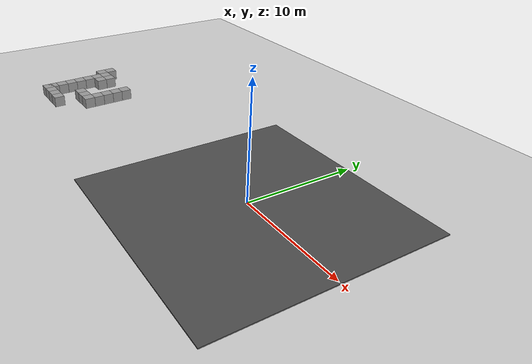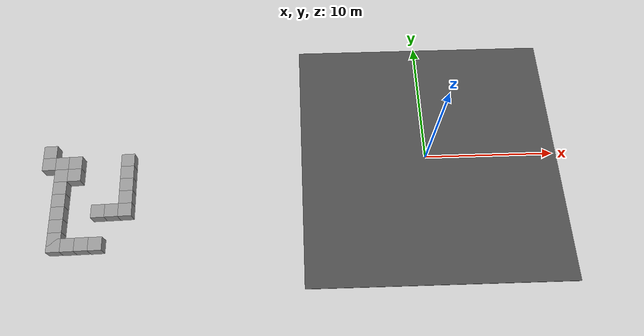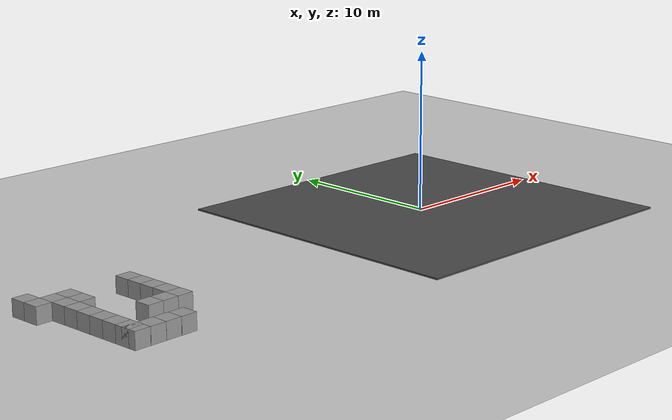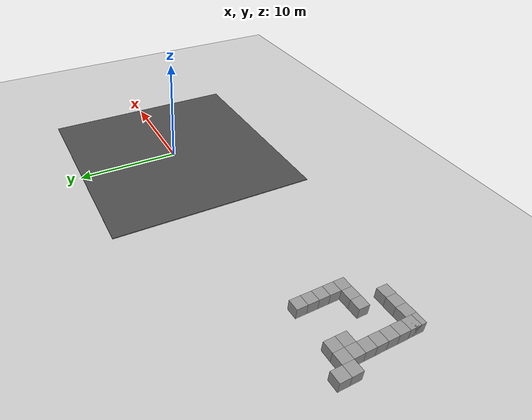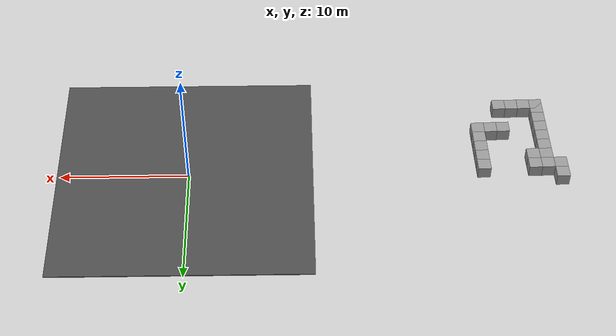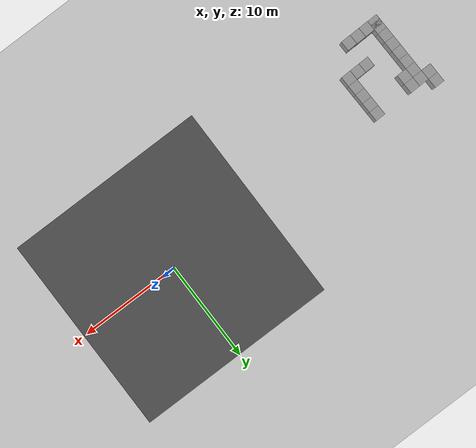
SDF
<sdf version="1.6">
 <world name="default">
  <model name="ground_plane">
   <static>1</static>
   <link name="link">
    <collision name="collision">
     <geometry><plane><normal>0 0 1</normal><size>100 100</size></plane></geometry>
     <surface><friction><ode><mu>100</mu><mu2>50</mu2></ode></friction></surface>
    </collision>
    <visual name="visual">
     <cast_shadows>0</cast_shadows>
     <geometry><plane><normal>0 0 1</normal><size>100 100</size></plane></geometry>
     <material>
      <script><uri>file://media/materials/scripts/gazebo.material</uri><name>Gazebo/Grey</name></script>
     </material>
    </visual>
    <velocity_decay><linear>0</linear><angular>0</angular></velocity_decay>
   </link>
  </model>
  <model name="asphalt_plane">
   <static>1</static>
   <link name="link">
    <collision name="collision"><geometry><box><size>20 20 0.1</size></box></geometry></collision>
    <visual name="visual">
     <cast_shadows>0</cast_shadows>
     <geometry><box><size>20 20 0.1</size></box></geometry>
     <material>
      <script>
       <uri>model://asphalt_plane/materials/scripts</uri>
       <uri>model://asphalt_plane/materials/textures</uri>
       <name>vrc/asphalt</name>
      </script>
     </material>
    </visual>
    <velocity_decay><linear>0</linear><angular>0</angular></velocity_decay>
   </link>
   <pose>0.276446 -0.119478 0 0 -0 0</pose>
  </model>
  <model name="maze">
   <link name="link_clone">
    <pose>-2.9747 -0.060863 -0 0 -0 0</pose>
    <inertial>
     <mass>10</mass>
     <inertia>
      <ixx>0.166667</ixx>
      <ixy>0</ixy>
      <ixz>0</ixz>
      <iyy>0.166667</iyy>
      <iyz>0</iyz>
      <izz>0.166667</izz>
     </inertia>
    </inertial>
    <visual name="visual">
     <geometry><box><size>1 1 1</size></box></geometry>
     <material>
      <script><name>Gazebo/Grey</name><uri>file://media/materials/scripts/gazebo.material</uri></script>
      <ambient>0.3 0.3 0.3 1</ambient>
      <diffuse>0.7 0.7 0.7 1</diffuse>
      <specular>0.01 0.01 0.01 1</specular>
      <emissive>0 0 0 1</emissive>
      <shader type="vertex"><normal_map>__default__</normal_map></shader>
     </material>
    </visual>
    <collision name="collision">
     <geometry><box><size>1 1 1</size></box></geometry>
     <surface>
      <friction>
       <ode><mu>1</mu><mu2>1</mu2><fdir1>0 0 0</fdir1><slip1>0</slip1><slip2>0</slip2></ode>
       <torsional>
        <coefficient>1</coefficient>
        <patch_radius>0</patch_radius>
        <surface_radius>0</surface_radius>
        <use_patch_radius>1</use_patch_radius>
        <ode><slip>0</slip></ode>
       </torsional>
      </friction>
      <bounce><restitution_coefficient>0</restitution_coefficient><threshold>1e+06</threshold></bounce>
      <contact>
       <collide_without_contact>0</collide_without_contact>
       <collide_without_contact_bitmask>1</collide_without_contact_bitmask>
       <collide_bitmask>1</collide_bitmask>
       <ode>
        <soft_cfm>0</soft_cfm>
        <soft_erp>0.2</soft_erp>
        <kp>1e+13</kp>
        <kd>1</kd>
        <max_vel>0.01</max_vel>
        <min_depth>0</min_depth>
       </ode>
       <bullet>
        <split_impulse>1</split_impulse>
        <split_impulse_penetration_threshold>-0.01</split_impulse_penetration_threshold>
        <soft_cfm>0</soft_cfm>
        <soft_erp>0.2</soft_erp>
        <kp>1e+13</kp>
        <kd>1</kd>
       </bullet>
      </contact>
     </surface>
    </collision>
   </link>
   <link name="link_clone_10">
    <pose>-5.9747 0.43991 -0 0 -0 0</pose>
    <inertial>
     <mass>10</mass>
     <inertia>
      <ixx>0.166667</ixx>
      <ixy>0</ixy>
      <ixz>0</ixz>
      <iyy>0.166667</iyy>
      <iyz>0</iyz>
      <izz>0.166667</izz>
     </inertia>
    </inertial>
    <visual name="visual">
     <geometry><box><size>1 1 1</size></box></geometry>
     <material>
      <script><name>Gazebo/Grey</name><uri>file://media/materials/scripts/gazebo.material</uri></script>
      <ambient>0.3 0.3 0.3 1</ambient>
      <diffuse>0.7 0.7 0.7 1</diffuse>
      <specular>0.01 0.01 0.01 1</specular>
      <emissive>0 0 0 1</emissive>
      <shader type="vertex"><normal_map>__default__</normal_map></shader>
     </material>
    </visual>
    <collision name="collision">
     <geometry><box><size>1 1 1</size></box></geometry>
     <surface>
      <friction>
       <ode><mu>1</mu><mu2>1</mu2><fdir1>0 0 0</fdir1><slip1>0</slip1><slip2>0</slip2></ode>
       <torsional>
        <coefficient>1</coefficient>
        <patch_radius>0</patch_radius>
        <surface_radius>0</surface_radius>
        <use_patch_radius>1</use_patch_radius>
        <ode><slip>0</slip></ode>
       </torsional>
      </friction>
      <bounce><restitution_coefficient>0</restitution_coefficient><threshold>1e+06</threshold></bounce>
      <contact>
       <collide_without_contact>0</collide_without_contact>
       <collide_without_contact_bitmask>1</collide_without_contact_bitmask>
       <collide_bitmask>1</collide_bitmask>
       <ode>
        <soft_cfm>0</soft_cfm>
        <soft_erp>0.2</soft_erp>
        <kp>1e+13</kp>
        <kd>1</kd>
        <max_vel>0.01</max_vel>
        <min_depth>0</min_depth>
       </ode>
       <bullet>
        <split_impulse>1</split_impulse>
        <split_impulse_penetration_threshold>-0.01</split_impulse_penetration_threshold>
        <soft_cfm>0</soft_cfm>
        <soft_erp>0.2</soft_erp>
        <kp>1e+13</kp>
        <kd>1</kd>
       </bullet>
      </contact>
     </surface>
    </collision>
   </link>
   <link name="link_clone_11">
    <pose>-5.9747 1.43991 -0 0 -0 0</pose>
    <inertial>
     <mass>10</mass>
     <inertia>
      <ixx>0.166667</ixx>
      <ixy>0</ixy>
      <ixz>0</ixz>
      <iyy>0.166667</iyy>
      <iyz>0</iyz>
      <izz>0.166667</izz>
     </inertia>
    </inertial>
    <visual name="visual">
     <geometry><box><size>1 1 1</size></box></geometry>
     <material>
      <script><name>Gazebo/Grey</name><uri>file://media/materials/scripts/gazebo.material</uri></script>
      <ambient>0.3 0.3 0.3 1</ambient>
      <diffuse>0.7 0.7 0.7 1</diffuse>
      <specular>0.01 0.01 0.01 1</specular>
      <emissive>0 0 0 1</emissive>
      <shader type="vertex"><normal_map>__default__</normal_map></shader>
     </material>
    </visual>
    <collision name="collision">
     <geometry><box><size>1 1 1</size></box></geometry>
     <surface>
      <friction>
       <ode><mu>1</mu><mu2>1</mu2><fdir1>0 0 0</fdir1><slip1>0</slip1><slip2>0</slip2></ode>
       <torsional>
        <coefficient>1</coefficient>
        <patch_radius>0</patch_radius>
        <surface_radius>0</surface_radius>
        <use_patch_radius>1</use_patch_radius>
        <ode><slip>0</slip></ode>
       </torsional>
      </friction>
      <bounce><restitution_coefficient>0</restitution_coefficient><threshold>1e+06</threshold></bounce>
      <contact>
       <collide_without_contact>0</collide_without_contact>
       <collide_without_contact_bitmask>1</collide_without_contact_bitmask>
       <collide_bitmask>1</collide_bitmask>
       <ode>
        <soft_cfm>0</soft_cfm>
        <soft_erp>0.2</soft_erp>
        <kp>1e+13</kp>
        <kd>1</kd>
        <max_vel>0.01</max_vel>
        <min_depth>0</min_depth>
       </ode>
       <bullet>
        <split_impulse>1</split_impulse>
        <split_impulse_penetration_threshold>-0.01</split_impulse_penetration_threshold>
        <soft_cfm>0</soft_cfm>
        <soft_erp>0.2</soft_erp>
        <kp>1e+13</kp>
        <kd>1</kd>
       </bullet>
      </contact>
     </surface>
    </collision>
   </link>
   <link name="link_clone_12">
    <pose>-5.9747 2.43991 -0 0 -0 0</pose>
    <inertial>
     <mass>10</mass>
     <inertia>
      <ixx>0.166667</ixx>
      <ixy>0</ixy>
      <ixz>0</ixz>
      <iyy>0.166667</iyy>
      <iyz>0</iyz>
      <izz>0.166667</izz>
     </inertia>
    </inertial>
    <visual name="visual">
     <geometry><box><size>1 1 1</size></box></geometry>
     <material>
      <script><name>Gazebo/Grey</name><uri>file://media/materials/scripts/gazebo.material</uri></script>
      <ambient>0.3 0.3 0.3 1</ambient>
      <diffuse>0.7 0.7 0.7 1</diffuse>
      <specular>0.01 0.01 0.01 1</specular>
      <emissive>0 0 0 1</emissive>
      <shader type="vertex"><normal_map>__default__</normal_map></shader>
     </material>
    </visual>
    <collision name="collision">
     <geometry><box><size>1 1 1</size></box></geometry>
     <surface>
      <friction>
       <ode><mu>1</mu><mu2>1</mu2><fdir1>0 0 0</fdir1><slip1>0</slip1><slip2>0</slip2></ode>
       <torsional>
        <coefficient>1</coefficient>
        <patch_radius>0</patch_radius>
        <surface_radius>0</surface_radius>
        <use_patch_radius>1</use_patch_radius>
        <ode><slip>0</slip></ode>
       </torsional>
      </friction>
      <bounce><restitution_coefficient>0</restitution_coefficient><threshold>1e+06</threshold></bounce>
      <contact>
       <collide_without_contact>0</collide_without_contact>
       <collide_without_contact_bitmask>1</collide_without_contact_bitmask>
       <collide_bitmask>1</collide_bitmask>
       <ode>
        <soft_cfm>0</soft_cfm>
        <soft_erp>0.2</soft_erp>
        <kp>1e+13</kp>
        <kd>1</kd>
        <max_vel>0.01</max_vel>
        <min_depth>0</min_depth>
       </ode>
       <bullet>
        <split_impulse>1</split_impulse>
        <split_impulse_penetration_threshold>-0.01</split_impulse_penetration_threshold>
        <soft_cfm>0</soft_cfm>
        <soft_erp>0.2</soft_erp>
        <kp>1e+13</kp>
        <kd>1</kd>
       </bullet>
      </contact>
     </surface>
    </collision>
   </link>
   <link name="link_clone_13">
    <pose>-5.9747 3.43991 0 0 -0 0</pose>
    <inertial>
     <mass>10</mass>
     <inertia>
      <ixx>0.166667</ixx>
      <ixy>0</ixy>
      <ixz>0</ixz>
      <iyy>0.166667</iyy>
      <iyz>0</iyz>
      <izz>0.166667</izz>
     </inertia>
    </inertial>
    <visual name="visual">
     <geometry><box><size>1 1 1</size></box></geometry>
     <material>
      <script><name>Gazebo/Grey</name><uri>file://media/materials/scripts/gazebo.material</uri></script>
      <ambient>0.3 0.3 0.3 1</ambient>
      <diffuse>0.7 0.7 0.7 1</diffuse>
      <specular>0.01 0.01 0.01 1</specular>
      <emissive>0 0 0 1</emissive>
      <shader type="vertex"><normal_map>__default__</normal_map></shader>
     </material>
    </visual>
    <collision name="collision">
     <geometry><box><size>1 1 1</size></box></geometry>
     <surface>
      <friction>
       <ode><mu>1</mu><mu2>1</mu2><fdir1>0 0 0</fdir1><slip1>0</slip1><slip2>0</slip2></ode>
       <torsional>
        <coefficient>1</coefficient>
        <patch_radius>0</patch_radius>
        <surface_radius>0</surface_radius>
        <use_patch_radius>1</use_patch_radius>
        <ode><slip>0</slip></ode>
       </torsional>
      </friction>
      <bounce><restitution_coefficient>0</restitution_coefficient><threshold>1e+06</threshold></bounce>
      <contact>
       <collide_without_contact>0</collide_without_contact>
       <collide_without_contact_bitmask>1</collide_without_contact_bitmask>
       <collide_bitmask>1</collide_bitmask>
       <ode>
        <soft_cfm>0</soft_cfm>
        <soft_erp>0.2</soft_erp>
        <kp>1e+13</kp>
        <kd>1</kd>
        <max_vel>0.01</max_vel>
        <min_depth>0</min_depth>
       </ode>
       <bullet>
        <split_impulse>1</split_impulse>
        <split_impulse_penetration_threshold>-0.01</split_impulse_penetration_threshold>
        <soft_cfm>0</soft_cfm>
        <soft_erp>0.2</soft_erp>
        <kp>1e+13</kp>
        <kd>1</kd>
       </bullet>
      </contact>
     </surface>
    </collision>
   </link>
   <link name="link_clone_14">
    <pose>-5.9747 4.43991 0 0 -0 0</pose>
    <inertial>
     <mass>10</mass>
     <inertia>
      <ixx>0.166667</ixx>
      <ixy>0</ixy>
      <ixz>0</ixz>
      <iyy>0.166667</iyy>
      <iyz>0</iyz>
      <izz>0.166667</izz>
     </inertia>
    </inertial>
    <visual name="visual">
     <geometry><box><size>1 1 1</size></box></geometry>
     <material>
      <script><name>Gazebo/Grey</name><uri>file://media/materials/scripts/gazebo.material</uri></script>
      <ambient>0.3 0.3 0.3 1</ambient>
      <diffuse>0.7 0.7 0.7 1</diffuse>
      <specular>0.01 0.01 0.01 1</specular>
      <emissive>0 0 0 1</emissive>
      <shader type="vertex"><normal_map>__default__</normal_map></shader>
     </material>
    </visual>
    <collision name="collision">
     <geometry><box><size>1 1 1</size></box></geometry>
     <surface>
      <friction>
       <ode><mu>1</mu><mu2>1</mu2><fdir1>0 0 0</fdir1><slip1>0</slip1><slip2>0</slip2></ode>
       <torsional>
        <coefficient>1</coefficient>
        <patch_radius>0</patch_radius>
        <surface_radius>0</surface_radius>
        <use_patch_radius>1</use_patch_radius>
        <ode><slip>0</slip></ode>
       </torsional>
      </friction>
      <bounce><restitution_coefficient>0</restitution_coefficient><threshold>1e+06</threshold></bounce>
      <contact>
       <collide_without_contact>0</collide_without_contact>
       <collide_without_contact_bitmask>1</collide_without_contact_bitmask>
       <collide_bitmask>1</collide_bitmask>
       <ode>
        <soft_cfm>0</soft_cfm>
        <soft_erp>0.2</soft_erp>
        <kp>1e+13</kp>
        <kd>1</kd>
        <max_vel>0.01</max_vel>
        <min_depth>0</min_depth>
       </ode>
       <bullet>
        <split_impulse>1</split_impulse>
        <split_impulse_penetration_threshold>-0.01</split_impulse_penetration_threshold>
        <soft_cfm>0</soft_cfm>
        <soft_erp>0.2</soft_erp>
        <kp>1e+13</kp>
        <kd>1</kd>
       </bullet>
      </contact>
     </surface>
    </collision>
   </link>
   <link name="link_clone_15">
    <pose>-5.9747 5.43991 0 0 -0 0</pose>
    <inertial>
     <mass>10</mass>
     <inertia>
      <ixx>0.166667</ixx>
      <ixy>0</ixy>
      <ixz>0</ixz>
      <iyy>0.166667</iyy>
      <iyz>0</iyz>
      <izz>0.166667</izz>
     </inertia>
    </inertial>
    <visual name="visual">
     <geometry><box><size>1 1 1</size></box></geometry>
     <material>
      <script><name>Gazebo/Grey</name><uri>file://media/materials/scripts/gazebo.material</uri></script>
      <ambient>0.3 0.3 0.3 1</ambient>
      <diffuse>0.7 0.7 0.7 1</diffuse>
      <specular>0.01 0.01 0.01 1</specular>
      <emissive>0 0 0 1</emissive>
      <shader type="vertex"><normal_map>__default__</normal_map></shader>
     </material>
    </visual>
    <collision name="collision">
     <geometry><box><size>1 1 1</size></box></geometry>
     <surface>
      <friction>
       <ode><mu>1</mu><mu2>1</mu2><fdir1>0 0 0</fdir1><slip1>0</slip1><slip2>0</slip2></ode>
       <torsional>
        <coefficient>1</coefficient>
        <patch_radius>0</patch_radius>
        <surface_radius>0</surface_radius>
        <use_patch_radius>1</use_patch_radius>
        <ode><slip>0</slip></ode>
       </torsional>
      </friction>
      <bounce><restitution_coefficient>0</restitution_coefficient><threshold>1e+06</threshold></bounce>
      <contact>
       <collide_without_contact>0</collide_without_contact>
       <collide_without_contact_bitmask>1</collide_without_contact_bitmask>
       <collide_bitmask>1</collide_bitmask>
       <ode>
        <soft_cfm>0</soft_cfm>
        <soft_erp>0.2</soft_erp>
        <kp>1e+13</kp>
        <kd>1</kd>
        <max_vel>0.01</max_vel>
        <min_depth>0</min_depth>
       </ode>
       <bullet>
        <split_impulse>1</split_impulse>
        <split_impulse_penetration_threshold>-0.01</split_impulse_penetration_threshold>
        <soft_cfm>0</soft_cfm>
        <soft_erp>0.2</soft_erp>
        <kp>1e+13</kp>
        <kd>1</kd>
       </bullet>
      </contact>
     </surface>
    </collision>
   </link>
   <link name="link_clone_16">
    <pose>-4.9747 5.43991 0 0 -0 0</pose>
    <inertial>
     <mass>10</mass>
     <inertia>
      <ixx>0.166667</ixx>
      <ixy>0</ixy>
      <ixz>0</ixz>
      <iyy>0.166667</iyy>
      <iyz>0</iyz>
      <izz>0.166667</izz>
     </inertia>
    </inertial>
    <visual name="visual">
     <geometry><box><size>1 1 1</size></box></geometry>
     <material>
      <script><name>Gazebo/Grey</name><uri>file://media/materials/scripts/gazebo.material</uri></script>
      <ambient>0.3 0.3 0.3 1</ambient>
      <diffuse>0.7 0.7 0.7 1</diffuse>
      <specular>0.01 0.01 0.01 1</specular>
      <emissive>0 0 0 1</emissive>
      <shader type="vertex"><normal_map>__default__</normal_map></shader>
     </material>
    </visual>
    <collision name="collision">
     <geometry><box><size>1 1 1</size></box></geometry>
     <surface>
      <friction>
       <ode><mu>1</mu><mu2>1</mu2><fdir1>0 0 0</fdir1><slip1>0</slip1><slip2>0</slip2></ode>
       <torsional>
        <coefficient>1</coefficient>
        <patch_radius>0</patch_radius>
        <surface_radius>0</surface_radius>
        <use_patch_radius>1</use_patch_radius>
        <ode><slip>0</slip></ode>
       </torsional>
      </friction>
      <bounce><restitution_coefficient>0</restitution_coefficient><threshold>1e+06</threshold></bounce>
      <contact>
       <collide_without_contact>0</collide_without_contact>
       <collide_without_contact_bitmask>1</collide_without_contact_bitmask>
       <collide_bitmask>1</collide_bitmask>
       <ode>
        <soft_cfm>0</soft_cfm>
        <soft_erp>0.2</soft_erp>
        <kp>1e+13</kp>
        <kd>1</kd>
        <max_vel>0.01</max_vel>
        <min_depth>0</min_depth>
       </ode>
       <bullet>
        <split_impulse>1</split_impulse>
        <split_impulse_penetration_threshold>-0.01</split_impulse_penetration_threshold>
        <soft_cfm>0</soft_cfm>
        <soft_erp>0.2</soft_erp>
        <kp>1e+13</kp>
        <kd>1</kd>
       </bullet>
      </contact>
     </surface>
    </collision>
   </link>
   <link name="link_clone_17">
    <pose>-4.9747 6.43991 -0 0 -0 0</pose>
    <inertial>
     <mass>10</mass>
     <inertia>
      <ixx>0.166667</ixx>
      <ixy>0</ixy>
      <ixz>0</ixz>
      <iyy>0.166667</iyy>
      <iyz>0</iyz>
      <izz>0.166667</izz>
     </inertia>
    </inertial>
    <visual name="visual">
     <geometry><box><size>1 1 1</size></box></geometry>
     <material>
      <script><name>Gazebo/Grey</name><uri>file://media/materials/scripts/gazebo.material</uri></script>
      <ambient>0.3 0.3 0.3 1</ambient>
      <diffuse>0.7 0.7 0.7 1</diffuse>
      <specular>0.01 0.01 0.01 1</specular>
      <emissive>0 0 0 1</emissive>
      <shader type="vertex"><normal_map>__default__</normal_map></shader>
     </material>
    </visual>
    <collision name="collision">
     <geometry><box><size>1 1 1</size></box></geometry>
     <surface>
      <friction>
       <ode><mu>1</mu><mu2>1</mu2><fdir1>0 0 0</fdir1><slip1>0</slip1><slip2>0</slip2></ode>
       <torsional>
        <coefficient>1</coefficient>
        <patch_radius>0</patch_radius>
        <surface_radius>0</surface_radius>
        <use_patch_radius>1</use_patch_radius>
        <ode><slip>0</slip></ode>
       </torsional>
      </friction>
      <bounce><restitution_coefficient>0</restitution_coefficient><threshold>1e+06</threshold></bounce>
      <contact>
       <collide_without_contact>0</collide_without_contact>
       <collide_without_contact_bitmask>1</collide_without_contact_bitmask>
       <collide_bitmask>1</collide_bitmask>
       <ode>
        <soft_cfm>0</soft_cfm>
        <soft_erp>0.2</soft_erp>
        <kp>1e+13</kp>
        <kd>1</kd>
        <max_vel>0.01</max_vel>
        <min_depth>0</min_depth>
       </ode>
       <bullet>
        <split_impulse>1</split_impulse>
        <split_impulse_penetration_threshold>-0.01</split_impulse_penetration_threshold>
        <soft_cfm>0</soft_cfm>
        <soft_erp>0.2</soft_erp>
        <kp>1e+13</kp>
        <kd>1</kd>
       </bullet>
      </contact>
     </surface>
    </collision>
   </link>
   <link name="link_clone_18">
    <pose>-0.974702 3.43991 0 0 -0 0</pose>
    <inertial>
     <mass>10</mass>
     <inertia>
      <ixx>0.166667</ixx>
      <ixy>0</ixy>
      <ixz>0</ixz>
      <iyy>0.166667</iyy>
      <iyz>0</iyz>
      <izz>0.166667</izz>
     </inertia>
    </inertial>
    <visual name="visual">
     <geometry><box><size>1 1 1</size></box></geometry>
     <material>
      <script><name>Gazebo/Grey</name><uri>file://media/materials/scripts/gazebo.material</uri></script>
      <ambient>0.3 0.3 0.3 1</ambient>
      <diffuse>0.7 0.7 0.7 1</diffuse>
      <specular>0.01 0.01 0.01 1</specular>
      <emissive>0 0 0 1</emissive>
      <shader type="vertex"><normal_map>__default__</normal_map></shader>
     </material>
    </visual>
    <collision name="collision">
     <geometry><box><size>1 1 1</size></box></geometry>
     <surface>
      <friction>
       <ode><mu>1</mu><mu2>1</mu2><fdir1>0 0 0</fdir1><slip1>0</slip1><slip2>0</slip2></ode>
       <torsional>
        <coefficient>1</coefficient>
        <patch_radius>0</patch_radius>
        <surface_radius>0</surface_radius>
        <use_patch_radius>1</use_patch_radius>
        <ode><slip>0</slip></ode>
       </torsional>
      </friction>
      <bounce><restitution_coefficient>0</restitution_coefficient><threshold>1e+06</threshold></bounce>
      <contact>
       <collide_without_contact>0</collide_without_contact>
       <collide_without_contact_bitmask>1</collide_without_contact_bitmask>
       <collide_bitmask>1</collide_bitmask>
       <ode>
        <soft_cfm>0</soft_cfm>
        <soft_erp>0.2</soft_erp>
        <kp>1e+13</kp>
        <kd>1</kd>
        <max_vel>0.01</max_vel>
        <min_depth>0</min_depth>
       </ode>
       <bullet>
        <split_impulse>1</split_impulse>
        <split_impulse_penetration_threshold>-0.01</split_impulse_penetration_threshold>
        <soft_cfm>0</soft_cfm>
        <soft_erp>0.2</soft_erp>
        <kp>1e+13</kp>
        <kd>1</kd>
       </bullet>
      </contact>
     </surface>
    </collision>
   </link>
   <link name="link_clone_19">
    <pose>-0.9747 4.43991 0 0 -0 0</pose>
    <inertial>
     <mass>10</mass>
     <inertia>
      <ixx>0.166667</ixx>
      <ixy>0</ixy>
      <ixz>0</ixz>
      <iyy>0.166667</iyy>
      <iyz>0</iyz>
      <izz>0.166667</izz>
     </inertia>
    </inertial>
    <visual name="visual">
     <geometry><box><size>1 1 1</size></box></geometry>
     <material>
      <script><name>Gazebo/Grey</name><uri>file://media/materials/scripts/gazebo.material</uri></script>
      <ambient>0.3 0.3 0.3 1</ambient>
      <diffuse>0.7 0.7 0.7 1</diffuse>
      <specular>0.01 0.01 0.01 1</specular>
      <emissive>0 0 0 1</emissive>
      <shader type="vertex"><normal_map>__default__</normal_map></shader>
     </material>
    </visual>
    <collision name="collision">
     <geometry><box><size>1 1 1</size></box></geometry>
     <surface>
      <friction>
       <ode><mu>1</mu><mu2>1</mu2><fdir1>0 0 0</fdir1><slip1>0</slip1><slip2>0</slip2></ode>
       <torsional>
        <coefficient>1</coefficient>
        <patch_radius>0</patch_radius>
        <surface_radius>0</surface_radius>
        <use_patch_radius>1</use_patch_radius>
        <ode><slip>0</slip></ode>
       </torsional>
      </friction>
      <bounce><restitution_coefficient>0</restitution_coefficient><threshold>1e+06</threshold></bounce>
      <contact>
       <collide_without_contact>0</collide_without_contact>
       <collide_without_contact_bitmask>1</collide_without_contact_bitmask>
       <collide_bitmask>1</collide_bitmask>
       <ode>
        <soft_cfm>0</soft_cfm>
        <soft_erp>0.2</soft_erp>
        <kp>1e+13</kp>
        <kd>1</kd>
        <max_vel>0.01</max_vel>
        <min_depth>0</min_depth>
       </ode>
       <bullet>
        <split_impulse>1</split_impulse>
        <split_impulse_penetration_threshold>-0.01</split_impulse_penetration_threshold>
        <soft_cfm>0</soft_cfm>
        <soft_erp>0.2</soft_erp>
        <kp>1e+13</kp>
        <kd>1</kd>
       </bullet>
      </contact>
     </surface>
    </collision>
   </link>
   <link name="link_clone_20">
    <pose>-0.9747 5.43991 0 0 -0 0</pose>
    <inertial>
     <mass>10</mass>
     <inertia>
      <ixx>0.166667</ixx>
      <ixy>0</ixy>
      <ixz>0</ixz>
      <iyy>0.166667</iyy>
      <iyz>0</iyz>
      <izz>0.166667</izz>
     </inertia>
    </inertial>
    <visual name="visual">
     <geometry><box><size>1 1 1</size></box></geometry>
     <material>
      <script><name>Gazebo/Grey</name><uri>file://media/materials/scripts/gazebo.material</uri></script>
      <ambient>0.3 0.3 0.3 1</ambient>
      <diffuse>0.7 0.7 0.7 1</diffuse>
      <specular>0.01 0.01 0.01 1</specular>
      <emissive>0 0 0 1</emissive>
      <shader type="vertex"><normal_map>__default__</normal_map></shader>
     </material>
    </visual>
    <collision name="collision">
     <geometry><box><size>1 1 1</size></box></geometry>
     <surface>
      <friction>
       <ode><mu>1</mu><mu2>1</mu2><fdir1>0 0 0</fdir1><slip1>0</slip1><slip2>0</slip2></ode>
       <torsional>
        <coefficient>1</coefficient>
        <patch_radius>0</patch_radius>
        <surface_radius>0</surface_radius>
        <use_patch_radius>1</use_patch_radius>
        <ode><slip>0</slip></ode>
       </torsional>
      </friction>
      <bounce><restitution_coefficient>0</restitution_coefficient><threshold>1e+06</threshold></bounce>
      <contact>
       <collide_without_contact>0</collide_without_contact>
       <collide_without_contact_bitmask>1</collide_without_contact_bitmask>
       <collide_bitmask>1</collide_bitmask>
       <ode>
        <soft_cfm>0</soft_cfm>
        <soft_erp>0.2</soft_erp>
        <kp>1e+13</kp>
        <kd>1</kd>
        <max_vel>0.01</max_vel>
        <min_depth>0</min_depth>
       </ode>
       <bullet>
        <split_impulse>1</split_impulse>
        <split_impulse_penetration_threshold>-0.01</split_impulse_penetration_threshold>
        <soft_cfm>0</soft_cfm>
        <soft_erp>0.2</soft_erp>
        <kp>1e+13</kp>
        <kd>1</kd>
       </bullet>
      </contact>
     </surface>
    </collision>
   </link>
   <link name="link_clone_21">
    <pose>-0.974701 6.43991 0 0 -0 0</pose>
    <inertial>
     <mass>10</mass>
     <inertia>
      <ixx>0.166667</ixx>
      <ixy>0</ixy>
      <ixz>0</ixz>
      <iyy>0.166667</iyy>
      <iyz>0</iyz>
      <izz>0.166667</izz>
     </inertia>
    </inertial>
    <visual name="visual">
     <geometry><box><size>1 1 1</size></box></geometry>
     <material>
      <script><name>Gazebo/Grey</name><uri>file://media/materials/scripts/gazebo.material</uri></script>
      <ambient>0.3 0.3 0.3 1</ambient>
      <diffuse>0.7 0.7 0.7 1</diffuse>
      <specular>0.01 0.01 0.01 1</specular>
      <emissive>0 0 0 1</emissive>
      <shader type="vertex"><normal_map>__default__</normal_map></shader>
     </material>
    </visual>
    <collision name="collision">
     <geometry><box><size>1 1 1</size></box></geometry>
     <surface>
      <friction>
       <ode><mu>1</mu><mu2>1</mu2><fdir1>0 0 0</fdir1><slip1>0</slip1><slip2>0</slip2></ode>
       <torsional>
        <coefficient>1</coefficient>
        <patch_radius>0</patch_radius>
        <surface_radius>0</surface_radius>
        <use_patch_radius>1</use_patch_radius>
        <ode><slip>0</slip></ode>
       </torsional>
      </friction>
      <bounce><restitution_coefficient>0</restitution_coefficient><threshold>1e+06</threshold></bounce>
      <contact>
       <collide_without_contact>0</collide_without_contact>
       <collide_without_contact_bitmask>1</collide_without_contact_bitmask>
       <collide_bitmask>1</collide_bitmask>
       <ode>
        <soft_cfm>0</soft_cfm>
        <soft_erp>0.2</soft_erp>
        <kp>1e+13</kp>
        <kd>1</kd>
        <max_vel>0.01</max_vel>
        <min_depth>0</min_depth>
       </ode>
       <bullet>
        <split_impulse>1</split_impulse>
        <split_impulse_penetration_threshold>-0.01</split_impulse_penetration_threshold>
        <soft_cfm>0</soft_cfm>
        <soft_erp>0.2</soft_erp>
        <kp>1e+13</kp>
        <kd>1</kd>
       </bullet>
      </contact>
     </surface>
    </collision>
   </link>
   <link name="link_clone_25">
    <pose>-6.9747 6.43991 0 0 -0 0</pose>
    <inertial>
     <mass>10</mass>
     <inertia>
      <ixx>0.166667</ixx>
      <ixy>0</ixy>
      <ixz>0</ixz>
      <iyy>0.166667</iyy>
      <iyz>0</iyz>
      <izz>0.166667</izz>
     </inertia>
    </inertial>
    <visual name="visual">
     <geometry><box><size>1 1 1</size></box></geometry>
     <material>
      <script><name>Gazebo/Grey</name><uri>file://media/materials/scripts/gazebo.material</uri></script>
      <ambient>0.3 0.3 0.3 1</ambient>
      <diffuse>0.7 0.7 0.7 1</diffuse>
      <specular>0.01 0.01 0.01 1</specular>
      <emissive>0 0 0 1</emissive>
      <shader type="vertex"><normal_map>__default__</normal_map></shader>
     </material>
    </visual>
    <collision name="collision">
     <geometry><box><size>1 1 1</size></box></geometry>
     <surface>
      <friction>
       <ode><mu>1</mu><mu2>1</mu2><fdir1>0 0 0</fdir1><slip1>0</slip1><slip2>0</slip2></ode>
       <torsional>
        <coefficient>1</coefficient>
        <patch_radius>0</patch_radius>
        <surface_radius>0</surface_radius>
        <use_patch_radius>1</use_patch_radius>
        <ode><slip>0</slip></ode>
       </torsional>
      </friction>
      <bounce><restitution_coefficient>0</restitution_coefficient><threshold>1e+06</threshold></bounce>
      <contact>
       <collide_without_contact>0</collide_without_contact>
       <collide_without_contact_bitmask>1</collide_without_contact_bitmask>
       <collide_bitmask>1</collide_bitmask>
       <ode>
        <soft_cfm>0</soft_cfm>
        <soft_erp>0.2</soft_erp>
        <kp>1e+13</kp>
        <kd>1</kd>
        <max_vel>0.01</max_vel>
        <min_depth>0</min_depth>
       </ode>
       <bullet>
        <split_impulse>1</split_impulse>
        <split_impulse_penetration_threshold>-0.01</split_impulse_penetration_threshold>
        <soft_cfm>0</soft_cfm>
        <soft_erp>0.2</soft_erp>
        <kp>1e+13</kp>
        <kd>1</kd>
       </bullet>
      </contact>
     </surface>
    </collision>
   </link>
   <link name="link_clone_27">
    <pose>-5.9747 6.43991 0 0 -0 0</pose>
    <inertial>
     <mass>10</mass>
     <inertia>
      <ixx>0.166667</ixx>
      <ixy>0</ixy>
      <ixz>0</ixz>
      <iyy>0.166667</iyy>
      <iyz>0</iyz>
      <izz>0.166667</izz>
     </inertia>
    </inertial>
    <visual name="visual">
     <geometry><box><size>1 1 1</size></box></geometry>
     <material>
      <script><name>Gazebo/Grey</name><uri>file://media/materials/scripts/gazebo.material</uri></script>
      <ambient>0.3 0.3 0.3 1</ambient>
      <diffuse>0.7 0.7 0.7 1</diffuse>
      <specular>0.01 0.01 0.01 1</specular>
      <emissive>0 0 0 1</emissive>
      <shader type="vertex"><normal_map>__default__</normal_map></shader>
     </material>
    </visual>
    <collision name="collision">
     <geometry><box><size>1 1 1</size></box></geometry>
     <surface>
      <friction>
       <ode><mu>1</mu><mu2>1</mu2><fdir1>0 0 0</fdir1><slip1>0</slip1><slip2>0</slip2></ode>
       <torsional>
        <coefficient>1</coefficient>
        <patch_radius>0</patch_radius>
        <surface_radius>0</surface_radius>
        <use_patch_radius>1</use_patch_radius>
        <ode><slip>0</slip></ode>
       </torsional>
      </friction>
      <bounce><restitution_coefficient>0</restitution_coefficient><threshold>1e+06</threshold></bounce>
      <contact>
       <collide_without_contact>0</collide_without_contact>
       <collide_without_contact_bitmask>1</collide_without_contact_bitmask>
       <collide_bitmask>1</collide_bitmask>
       <ode>
        <soft_cfm>0</soft_cfm>
        <soft_erp>0.2</soft_erp>
        <kp>1e+13</kp>
        <kd>1</kd>
        <max_vel>0.01</max_vel>
        <min_depth>0</min_depth>
       </ode>
       <bullet>
        <split_impulse>1</split_impulse>
        <split_impulse_penetration_threshold>-0.01</split_impulse_penetration_threshold>
        <soft_cfm>0</soft_cfm>
        <soft_erp>0.2</soft_erp>
        <kp>1e+13</kp>
        <kd>1</kd>
       </bullet>
      </contact>
     </surface>
    </collision>
   </link>
   <link name="link_clone_28">
    <pose>-6.9747 7.43991 0 0 -0 0</pose>
    <inertial>
     <mass>10</mass>
     <inertia>
      <ixx>0.166667</ixx>
      <ixy>0</ixy>
      <ixz>0</ixz>
      <iyy>0.166667</iyy>
      <iyz>0</iyz>
      <izz>0.166667</izz>
     </inertia>
    </inertial>
    <visual name="visual">
     <geometry><box><size>1 1 1</size></box></geometry>
     <material>
      <script><name>Gazebo/Grey</name><uri>file://media/materials/scripts/gazebo.material</uri></script>
      <ambient>0.3 0.3 0.3 1</ambient>
      <diffuse>0.7 0.7 0.7 1</diffuse>
      <specular>0.01 0.01 0.01 1</specular>
      <emissive>0 0 0 1</emissive>
      <shader type="vertex"><normal_map>__default__</normal_map></shader>
     </material>
    </visual>
    <collision name="collision">
     <geometry><box><size>1 1 1</size></box></geometry>
     <surface>
      <friction>
       <ode><mu>1</mu><mu2>1</mu2><fdir1>0 0 0</fdir1><slip1>0</slip1><slip2>0</slip2></ode>
       <torsional>
        <coefficient>1</coefficient>
        <patch_radius>0</patch_radius>
        <surface_radius>0</surface_radius>
        <use_patch_radius>1</use_patch_radius>
        <ode><slip>0</slip></ode>
       </torsional>
      </friction>
      <bounce><restitution_coefficient>0</restitution_coefficient><threshold>1e+06</threshold></bounce>
      <contact>
       <collide_without_contact>0</collide_without_contact>
       <collide_without_contact_bitmask>1</collide_without_contact_bitmask>
       <collide_bitmask>1</collide_bitmask>
       <ode>
        <soft_cfm>0</soft_cfm>
        <soft_erp>0.2</soft_erp>
        <kp>1e+13</kp>
        <kd>1</kd>
        <max_vel>0.01</max_vel>
        <min_depth>0</min_depth>
       </ode>
       <bullet>
        <split_impulse>1</split_impulse>
        <split_impulse_penetration_threshold>-0.01</split_impulse_penetration_threshold>
        <soft_cfm>0</soft_cfm>
        <soft_erp>0.2</soft_erp>
        <kp>1e+13</kp>
        <kd>1</kd>
       </bullet>
      </contact>
     </surface>
    </collision>
   </link>
   <link name="link_clone_3">
    <pose>-0.974702 2.43991 0 0 -0 0</pose>
    <inertial>
     <mass>10</mass>
     <inertia>
      <ixx>0.166667</ixx>
      <ixy>0</ixy>
      <ixz>0</ixz>
      <iyy>0.166667</iyy>
      <iyz>0</iyz>
      <izz>0.166667</izz>
     </inertia>
    </inertial>
    <visual name="visual">
     <geometry><box><size>1 1 1</size></box></geometry>
     <material>
      <script><name>Gazebo/Grey</name><uri>file://media/materials/scripts/gazebo.material</uri></script>
      <ambient>0.3 0.3 0.3 1</ambient>
      <diffuse>0.7 0.7 0.7 1</diffuse>
      <specular>0.01 0.01 0.01 1</specular>
      <emissive>0 0 0 1</emissive>
      <shader type="vertex"><normal_map>__default__</normal_map></shader>
     </material>
    </visual>
    <collision name="collision">
     <geometry><box><size>1 1 1</size></box></geometry>
     <surface>
      <friction>
       <ode><mu>1</mu><mu2>1</mu2><fdir1>0 0 0</fdir1><slip1>0</slip1><slip2>0</slip2></ode>
       <torsional>
        <coefficient>1</coefficient>
        <patch_radius>0</patch_radius>
        <surface_radius>0</surface_radius>
        <use_patch_radius>1</use_patch_radius>
        <ode><slip>0</slip></ode>
       </torsional>
      </friction>
      <bounce><restitution_coefficient>0</restitution_coefficient><threshold>1e+06</threshold></bounce>
      <contact>
       <collide_without_contact>0</collide_without_contact>
       <collide_without_contact_bitmask>1</collide_without_contact_bitmask>
       <collide_bitmask>1</collide_bitmask>
       <ode>
        <soft_cfm>0</soft_cfm>
        <soft_erp>0.2</soft_erp>
        <kp>1e+13</kp>
        <kd>1</kd>
        <max_vel>0.01</max_vel>
        <min_depth>0</min_depth>
       </ode>
       <bullet>
        <split_impulse>1</split_impulse>
        <split_impulse_penetration_threshold>-0.01</split_impulse_penetration_threshold>
        <soft_cfm>0</soft_cfm>
        <soft_erp>0.2</soft_erp>
        <kp>1e+13</kp>
        <kd>1</kd>
       </bullet>
      </contact>
     </surface>
    </collision>
   </link>
   <link name="link_clone_4">
    <pose>-1.9747 2.43991 -0 0 -0 0</pose>
    <inertial>
     <mass>10</mass>
     <inertia>
      <ixx>0.166667</ixx>
      <ixy>0</ixy>
      <ixz>0</ixz>
      <iyy>0.166667</iyy>
      <iyz>0</iyz>
      <izz>0.166667</izz>
     </inertia>
    </inertial>
    <visual name="visual">
     <geometry><box><size>1 1 1</size></box></geometry>
     <material>
      <script><name>Gazebo/Grey</name><uri>file://media/materials/scripts/gazebo.material</uri></script>
      <ambient>0.3 0.3 0.3 1</ambient>
      <diffuse>0.7 0.7 0.7 1</diffuse>
      <specular>0.01 0.01 0.01 1</specular>
      <emissive>0 0 0 1</emissive>
      <shader type="vertex"><normal_map>__default__</normal_map></shader>
     </material>
    </visual>
    <collision name="collision">
     <geometry><box><size>1 1 1</size></box></geometry>
     <surface>
      <friction>
       <ode><mu>1</mu><mu2>1</mu2><fdir1>0 0 0</fdir1><slip1>0</slip1><slip2>0</slip2></ode>
       <torsional>
        <coefficient>1</coefficient>
        <patch_radius>0</patch_radius>
        <surface_radius>0</surface_radius>
        <use_patch_radius>1</use_patch_radius>
        <ode><slip>0</slip></ode>
       </torsional>
      </friction>
      <bounce><restitution_coefficient>0</restitution_coefficient><threshold>1e+06</threshold></bounce>
      <contact>
       <collide_without_contact>0</collide_without_contact>
       <collide_without_contact_bitmask>1</collide_without_contact_bitmask>
       <collide_bitmask>1</collide_bitmask>
       <ode>
        <soft_cfm>0</soft_cfm>
        <soft_erp>0.2</soft_erp>
        <kp>1e+13</kp>
        <kd>1</kd>
        <max_vel>0.01</max_vel>
        <min_depth>0</min_depth>
       </ode>
       <bullet>
        <split_impulse>1</split_impulse>
        <split_impulse_penetration_threshold>-0.01</split_impulse_penetration_threshold>
        <soft_cfm>0</soft_cfm>
        <soft_erp>0.2</soft_erp>
        <kp>1e+13</kp>
        <kd>1</kd>
       </bullet>
      </contact>
     </surface>
    </collision>
   </link>
   <link name="link_clone_5">
    <pose>-2.9747 2.43991 -0 0 -0 0</pose>
    <inertial>
     <mass>10</mass>
     <inertia>
      <ixx>0.166667</ixx>
      <ixy>0</ixy>
      <ixz>0</ixz>
      <iyy>0.166667</iyy>
      <iyz>0</iyz>
      <izz>0.166667</izz>
     </inertia>
    </inertial>
    <visual name="visual">
     <geometry><box><size>1 1 1</size></box></geometry>
     <material>
      <script><name>Gazebo/Grey</name><uri>file://media/materials/scripts/gazebo.material</uri></script>
      <ambient>0.3 0.3 0.3 1</ambient>
      <diffuse>0.7 0.7 0.7 1</diffuse>
      <specular>0.01 0.01 0.01 1</specular>
      <emissive>0 0 0 1</emissive>
      <shader type="vertex"><normal_map>__default__</normal_map></shader>
     </material>
    </visual>
    <collision name="collision">
     <geometry><box><size>1 1 1</size></box></geometry>
     <surface>
      <friction>
       <ode><mu>1</mu><mu2>1</mu2><fdir1>0 0 0</fdir1><slip1>0</slip1><slip2>0</slip2></ode>
       <torsional>
        <coefficient>1</coefficient>
        <patch_radius>0</patch_radius>
        <surface_radius>0</surface_radius>
        <use_patch_radius>1</use_patch_radius>
        <ode><slip>0</slip></ode>
       </torsional>
      </friction>
      <bounce><restitution_coefficient>0</restitution_coefficient><threshold>1e+06</threshold></bounce>
      <contact>
       <collide_without_contact>0</collide_without_contact>
       <collide_without_contact_bitmask>1</collide_without_contact_bitmask>
       <collide_bitmask>1</collide_bitmask>
       <ode>
        <soft_cfm>0</soft_cfm>
        <soft_erp>0.2</soft_erp>
        <kp>1e+13</kp>
        <kd>1</kd>
        <max_vel>0.01</max_vel>
        <min_depth>0</min_depth>
       </ode>
       <bullet>
        <split_impulse>1</split_impulse>
        <split_impulse_penetration_threshold>-0.01</split_impulse_penetration_threshold>
        <soft_cfm>0</soft_cfm>
        <soft_erp>0.2</soft_erp>
        <kp>1e+13</kp>
        <kd>1</kd>
       </bullet>
      </contact>
     </surface>
    </collision>
   </link>
   <link name="link_clone_6">
    <pose>-3.9747 -0.044986 0 0 -0 0</pose>
    <inertial>
     <mass>10</mass>
     <inertia>
      <ixx>0.166667</ixx>
      <ixy>0</ixy>
      <ixz>0</ixz>
      <iyy>0.166667</iyy>
      <iyz>0</iyz>
      <izz>0.166667</izz>
     </inertia>
    </inertial>
    <visual name="visual">
     <geometry><box><size>1 1 1</size></box></geometry>
     <material>
      <script><name>Gazebo/Grey</name><uri>file://media/materials/scripts/gazebo.material</uri></script>
      <ambient>0.3 0.3 0.3 1</ambient>
      <diffuse>0.7 0.7 0.7 1</diffuse>
      <specular>0.01 0.01 0.01 1</specular>
      <emissive>0 0 0 1</emissive>
      <shader type="vertex"><normal_map>__default__</normal_map></shader>
     </material>
    </visual>
    <collision name="collision">
     <geometry><box><size>1 1 1</size></box></geometry>
     <surface>
      <friction>
       <ode><mu>1</mu><mu2>1</mu2><fdir1>0 0 0</fdir1><slip1>0</slip1><slip2>0</slip2></ode>
       <torsional>
        <coefficient>1</coefficient>
        <patch_radius>0</patch_radius>
        <surface_radius>0</surface_radius>
        <use_patch_radius>1</use_patch_radius>
        <ode><slip>0</slip></ode>
       </torsional>
      </friction>
      <bounce><restitution_coefficient>0</restitution_coefficient><threshold>1e+06</threshold></bounce>
      <contact>
       <collide_without_contact>0</collide_without_contact>
       <collide_without_contact_bitmask>1</collide_without_contact_bitmask>
       <collide_bitmask>1</collide_bitmask>
       <ode>
        <soft_cfm>0</soft_cfm>
        <soft_erp>0.2</soft_erp>
        <kp>1e+13</kp>
        <kd>1</kd>
        <max_vel>0.01</max_vel>
        <min_depth>0</min_depth>
       </ode>
       <bullet>
        <split_impulse>1</split_impulse>
        <split_impulse_penetration_threshold>-0.01</split_impulse_penetration_threshold>
        <soft_cfm>0</soft_cfm>
        <soft_erp>0.2</soft_erp>
        <kp>1e+13</kp>
        <kd>1</kd>
       </bullet>
      </contact>
     </surface>
    </collision>
   </link>
   <link name="link_clone_8">
    <pose>-4.9747 -0.041628 0 0 -0 0</pose>
    <inertial>
     <mass>10</mass>
     <inertia>
      <ixx>0.166667</ixx>
      <ixy>0</ixy>
      <ixz>0</ixz>
      <iyy>0.166667</iyy>
      <iyz>0</iyz>
      <izz>0.166667</izz>
     </inertia>
    </inertial>
    <visual name="visual">
     <geometry><box><size>1 1 1</size></box></geometry>
     <material>
      <script><name>Gazebo/Grey</name><uri>file://media/materials/scripts/gazebo.material</uri></script>
      <ambient>0.3 0.3 0.3 1</ambient>
      <diffuse>0.7 0.7 0.7 1</diffuse>
      <specular>0.01 0.01 0.01 1</specular>
      <emissive>0 0 0 1</emissive>
      <shader type="vertex"><normal_map>__default__</normal_map></shader>
     </material>
    </visual>
    <collision name="collision">
     <geometry><box><size>1 1 1</size></box></geometry>
     <surface>
      <friction>
       <ode><mu>1</mu><mu2>1</mu2><fdir1>0 0 0</fdir1><slip1>0</slip1><slip2>0</slip2></ode>
       <torsional>
        <coefficient>1</coefficient>
        <patch_radius>0</patch_radius>
        <surface_radius>0</surface_radius>
        <use_patch_radius>1</use_patch_radius>
        <ode><slip>0</slip></ode>
       </torsional>
      </friction>
      <bounce><restitution_coefficient>0</restitution_coefficient><threshold>1e+06</threshold></bounce>
      <contact>
       <collide_without_contact>0</collide_without_contact>
       <collide_without_contact_bitmask>1</collide_without_contact_bitmask>
       <collide_bitmask>1</collide_bitmask>
       <ode>
        <soft_cfm>0</soft_cfm>
        <soft_erp>0.2</soft_erp>
        <kp>1e+13</kp>
        <kd>1</kd>
        <max_vel>0.01</max_vel>
        <min_depth>0</min_depth>
       </ode>
       <bullet>
        <split_impulse>1</split_impulse>
        <split_impulse_penetration_threshold>-0.01</split_impulse_penetration_threshold>
        <soft_cfm>0</soft_cfm>
        <soft_erp>0.2</soft_erp>
        <kp>1e+13</kp>
        <kd>1</kd>
       </bullet>
      </contact>
     </surface>
    </collision>
   </link>
   <link name="link_clone_9">
    <pose>-5.9747 -0.024169 0 0 -0 0</pose>
    <inertial>
     <mass>10</mass>
     <inertia>
      <ixx>0.166667</ixx>
      <ixy>0</ixy>
      <ixz>0</ixz>
      <iyy>0.166667</iyy>
      <iyz>0</iyz>
      <izz>0.166667</izz>
     </inertia>
    </inertial>
    <visual name="visual">
     <geometry><box><size>1 1 1</size></box></geometry>
     <material>
      <script><name>Gazebo/Grey</name><uri>file://media/materials/scripts/gazebo.material</uri></script>
      <ambient>0.3 0.3 0.3 1</ambient>
      <diffuse>0.7 0.7 0.7 1</diffuse>
      <specular>0.01 0.01 0.01 1</specular>
      <emissive>0 0 0 1</emissive>
      <shader type="vertex"><normal_map>__default__</normal_map></shader>
     </material>
    </visual>
    <collision name="collision">
     <geometry><box><size>1 1 1</size></box></geometry>
     <surface>
      <friction>
       <ode><mu>1</mu><mu2>1</mu2><fdir1>0 0 0</fdir1><slip1>0</slip1><slip2>0</slip2></ode>
       <torsional>
        <coefficient>1</coefficient>
        <patch_radius>0</patch_radius>
        <surface_radius>0</surface_radius>
        <use_patch_radius>1</use_patch_radius>
        <ode><slip>0</slip></ode>
       </torsional>
      </friction>
      <bounce><restitution_coefficient>0</restitution_coefficient><threshold>1e+06</threshold></bounce>
      <contact>
       <collide_without_contact>0</collide_without_contact>
       <collide_without_contact_bitmask>1</collide_without_contact_bitmask>
       <collide_bitmask>1</collide_bitmask>
       <ode>
        <soft_cfm>0</soft_cfm>
        <soft_erp>0.2</soft_erp>
        <kp>1e+13</kp>
        <kd>1</kd>
        <max_vel>0.01</max_vel>
        <min_depth>0</min_depth>
       </ode>
       <bullet>
        <split_impulse>1</split_impulse>
        <split_impulse_penetration_threshold>-0.01</split_impulse_penetration_threshold>
        <soft_cfm>0</soft_cfm>
        <soft_erp>0.2</soft_erp>
        <kp>1e+13</kp>
        <kd>1</kd>
       </bullet>
      </contact>
     </surface>
    </collision>
   </link>
   <static>0</static>
   <pose>-21.8827 -6.43764 0.549993 1e-06 7.4e-05 0.028554</pose>
  </model>
 </world>
</sdf>
